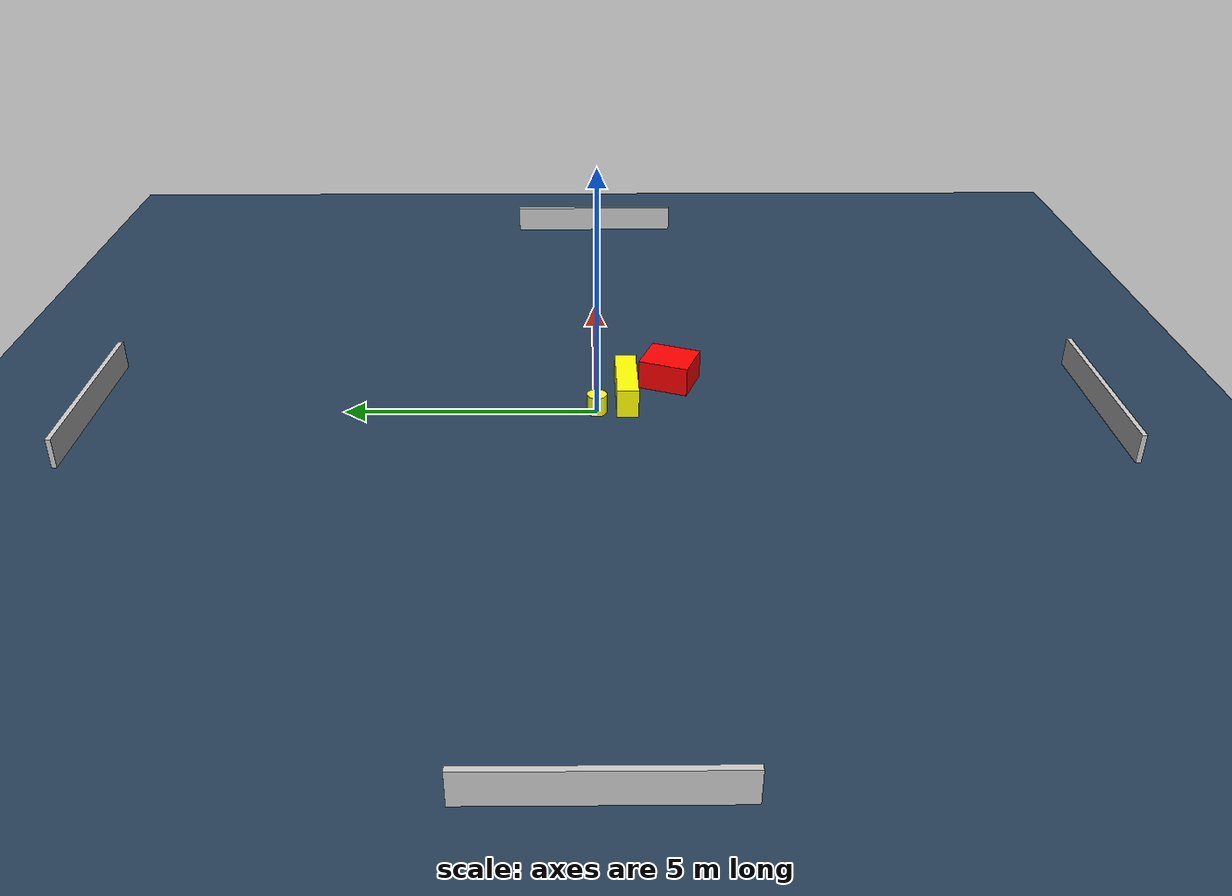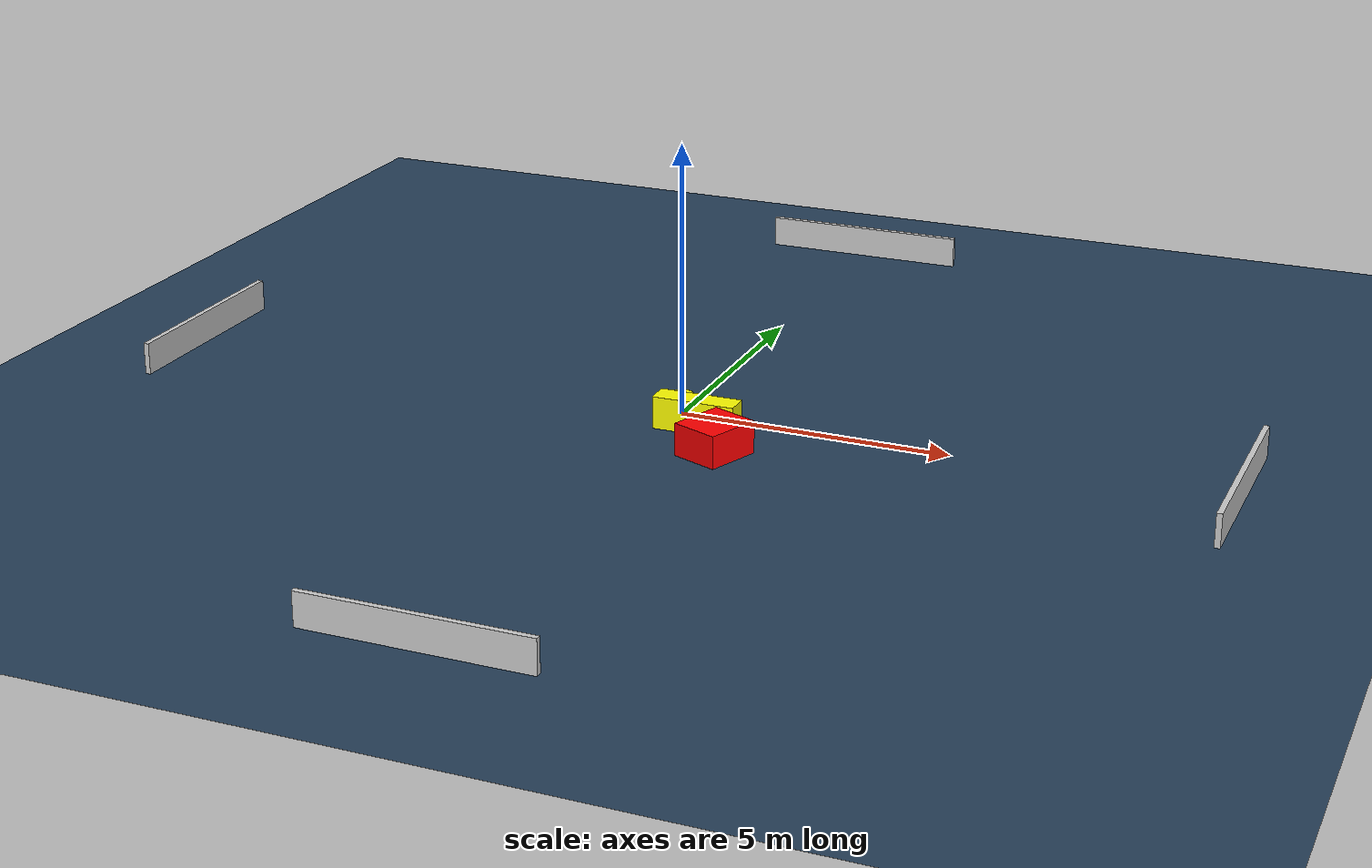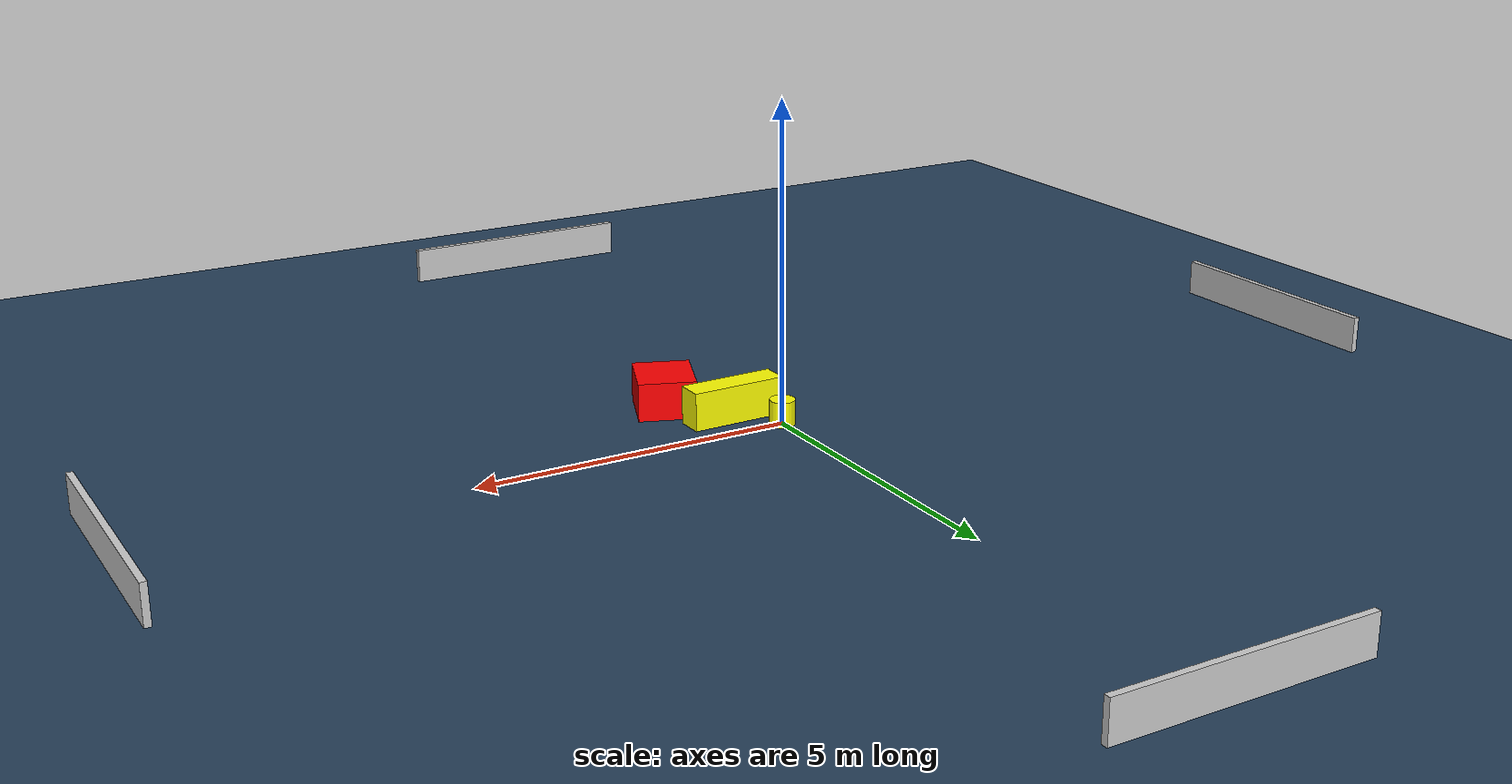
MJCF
<?xml version="1.0" ?>
<mujoco model="generated_environment">
  <option timestep="0.01" integrator="RK4" cone="elliptic"/>
  <default>
    <geom density="1"/>
  </default>
  <asset>
    <texture builtin="gradient" height="3072" name="skybox" rgb1="0.3 0.5 0.7" rgb2="0 0 0" type="skybox" width="512"/>
    <texture builtin="checker" height="300" name="groundplane" rgb1="0.2 0.3 0.4" rgb2="0.1 0.2 0.3" type="2d" width="300"/>
    <material name="groundplane" reflectance="0.2" texrepeat="5 5" texture="groundplane"/>
  </asset>
  <worldbody>
    <light dir="0 0 -1" directional="true" pos="0 0 1.5"/>
    <geom condim="3" friction="0.5 0.005 0.001" material="groundplane" name="floor" pos="0 0 0" size="0 0 0.05" type="plane"/>
    <body name="walls">
      <geom name="wall_1" condim="4" pos="-10.0 0.0 0.3" rgba="0.800000011920929 0.800000011920929 0.800000011920929 1.0" size="0.05 2.0 0.3" type="box"/>
      <geom name="wall_2" condim="4" pos="10.0 0.0 0.3" rgba="0.800000011920929 0.800000011920929 0.800000011920929 1.0" size="0.05 2.0 0.3" type="box"/>
      <geom name="wall_3" condim="4" pos="0.0 -10.0 0.3" rgba="0.800000011920929 0.800000011920929 0.800000011920929 1.0" size="2.0 0.05 0.3" type="box"/>
      <geom name="wall_4" condim="4" pos="0.0 10.0 0.3" rgba="0.800000011920929 0.800000011920929 0.800000011920929 1.0" size="2.0 0.05 0.3" type="box"/>
    </body>
    <body name="robot">
      <joint name="joint_x" type="slide" pos="0 0 0" axis="1 0 0"/>
      <joint name="joint_y" type="slide" pos="0 0 0" axis="0 1 0"/>
      <geom name="robot" type="cylinder" pos="0.0 0.0 0.2" size="0.2 0.2 0.0" mass="5.0" friction="1.0 0.005 0.0001" condim="4" rgba="1.0 1.0 0.0 1.0"/>
    </body>
    <body name="obstacle_1_movable">
      <geom name="obstacle_1_movable" condim="4" pos="0.5290086865140621 -0.596820144483122 0.3" euler="0 0 270.70511949390817" friction="0.0 0.005 0.001" rgba="1.0 1.0 0.0 1.0" size="0.21590629123409807 0.759869954054915 0.3" type="box" mass="0.1"/>
      <joint type="free"/>
    </body>
    <body name="obstacle_2_static">
      <geom name="obstacle_2_static" condim="4" pos="1.2327922990127667 -1.5041860512596654 0.3" euler="0 0 248.60654412729463" friction="0.0 0.005 0.001" rgba="1.0 0.0 0.0 1.0" size="0.5160378176718814 0.44968548314126944 0.3" type="box"/>
    </body>
  </worldbody>
  <actuator>
    <motor name="actuator_x" joint="joint_x" gear="1" ctrlrange="-1 1"/>
    <motor name="actuator_y" joint="joint_y" gear="1" ctrlrange="-1 1"/>
  </actuator>
</mujoco>
